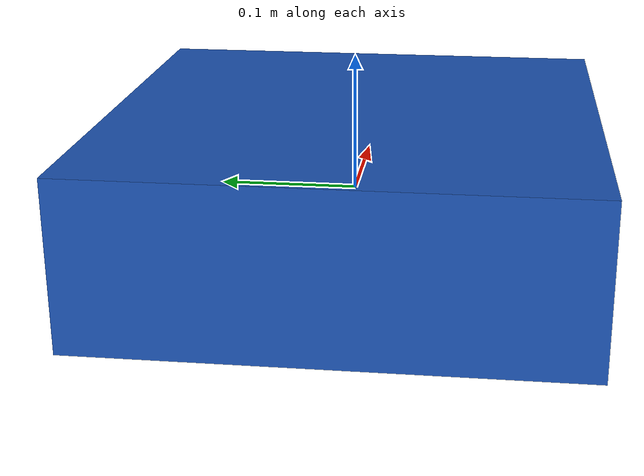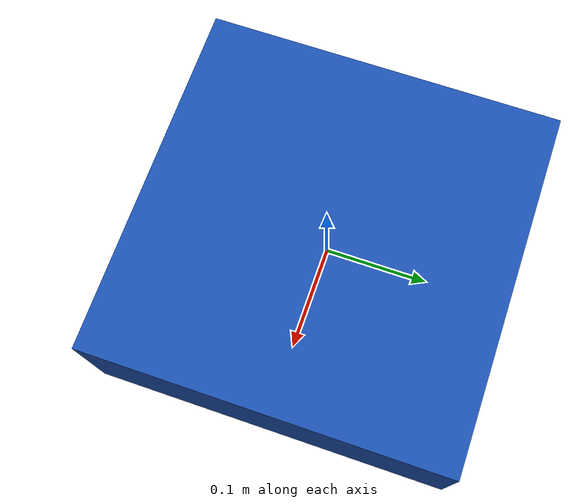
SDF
<?xml version="1.0"?>
<sdf version="1.9">
  <model name="test_quad">
    <pose>0 0 0 0 0 0</pose>
    <static>false</static>
    <link name="base_link">
      <inertial><mass>1.0</mass><inertia><ixx>0.02</ixx><iyy>0.02</iyy><izz>0.03</izz><ixy>0</ixy><ixz>0</ixz><iyz>0</iyz></inertia></inertial>
      <collision name="body_collision"><geometry><box><size>0.35 0.35 0.12</size></box></geometry></collision>
      <visual name="body_visual"><geometry><box><size>0.35 0.35 0.12</size></box></geometry><material><diffuse>0.12 0.35 0.75 1</diffuse></material></visual>
      <sensor name="imu_sensor" type="imu"><always_on>true</always_on><update_rate>100</update_rate></sensor>
      <sensor name="air_pressure_sensor" type="air_pressure"><always_on>true</always_on><update_rate>25</update_rate></sensor>
      <sensor name="magnetometer_sensor" type="magnetometer"><always_on>true</always_on><update_rate>50</update_rate></sensor>
      <sensor name="navsat_sensor" type="navsat"><always_on>true</always_on><update_rate>10</update_rate></sensor>
      <sensor name="forward_camera" type="camera">
        <pose>0.12 0 0.04 0 0 0</pose><always_on>true</always_on><update_rate>25</update_rate><visualize>false</visualize>
        <camera><horizontal_fov>1.3</horizontal_fov><image><width>320</width><height>240</height><format>R8G8B8</format></image><clip><near>0.1</near><far>200</far></clip></camera>
      </sensor>
    </link>
  </model>
</sdf>
